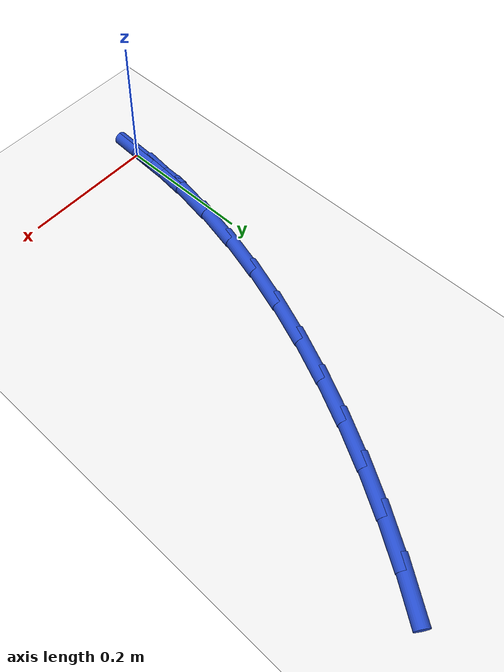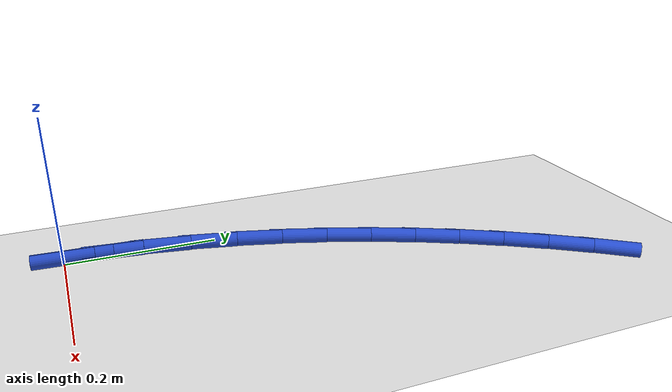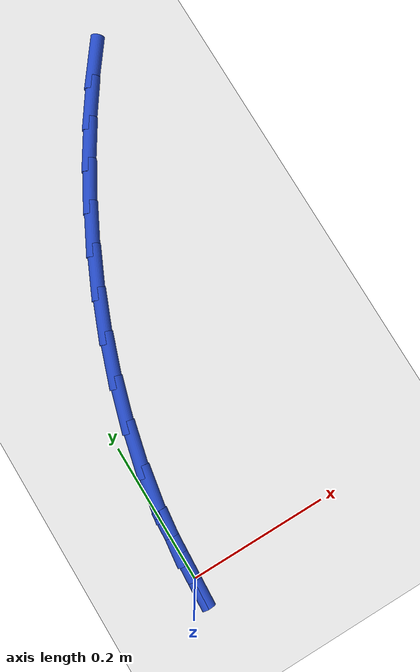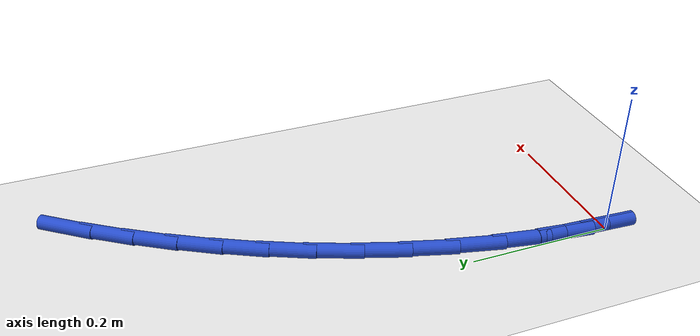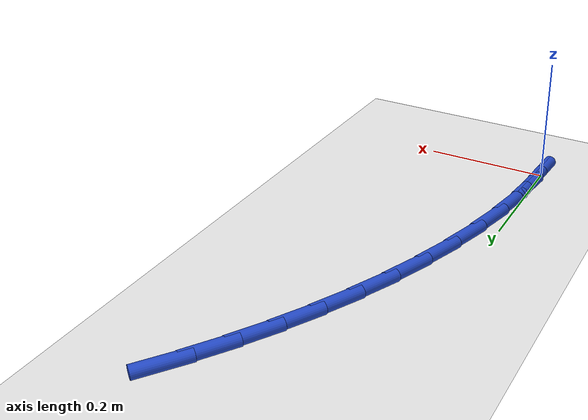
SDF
<sdf version="1.6">
 <world name="default">
  <model name="ground_plane">
   <static>1</static>
   <link name="link">
    <collision name="collision">
     <geometry><plane><normal>0 0 1</normal><size>100 100</size></plane></geometry>
     <surface><friction><ode><mu>100</mu><mu2>50</mu2></ode></friction></surface>
    </collision>
    <visual name="visual">
     <cast_shadows>0</cast_shadows>
     <geometry><plane><normal>0 0 1</normal><size>100 100</size></plane></geometry>
     <material>
      <script><uri>file://media/materials/scripts/gazebo.material</uri><name>Gazebo/WhiteGlow</name></script>
     </material>
    </visual>
   </link>
  </model>
  <model name="line">
   <link name="link_0">
    <pose>-6.591949208711867e-17 4.163336342344337e-17 0.01 0 1.57 1.5212386000244165</pose>
    <collision name="collision">
     <geometry><cylinder><radius>0.01</radius><length>0.08</length></cylinder></geometry>
    </collision>
    <visual name="visual">
     <material>
      <script><name>Gazebo/Blue</name><uri>file://media/materials/scripts/gazebo.material</uri></script>
     </material>
     <geometry><cylinder><radius>0.01</radius><length>0.08</length></cylinder></geometry>
    </visual>
   </link>
   <link name="link_1">
    <pose>0.003130985304847555 0.06312681974622587 0.01 0 1.57 1.4564902885779558</pose>
    <collision name="collision">
     <geometry><cylinder><radius>0.01</radius><length>0.08</length></cylinder></geometry>
    </collision>
    <visual name="visual">
     <material>
      <script><name>Gazebo/Blue</name><uri>file://media/materials/scripts/gazebo.material</uri></script>
     </material>
     <geometry><cylinder><radius>0.01</radius><length>0.08</length></cylinder></geometry>
    </visual>
   </link>
   <link name="link_2">
    <pose>0.01030703391631869 0.1256324204257895 0.01 0 1.57 1.395160729621984</pose>
    <collision name="collision">
     <geometry><cylinder><radius>0.01</radius><length>0.08</length></cylinder></geometry>
    </collision>
    <visual name="visual">
     <material>
      <script><name>Gazebo/Blue</name><uri>file://media/materials/scripts/gazebo.material</uri></script>
     </material>
     <geometry><cylinder><radius>0.01</radius><length>0.08</length></cylinder></geometry>
    </visual>
   </link>
   <link name="link_3">
    <pose>0.021262065247677743 0.18736337205437065 0.01 0 1.57 1.3371923100318246</pose>
    <collision name="collision">
     <geometry><cylinder><radius>0.01</radius><length>0.08</length></cylinder></geometry>
    </collision>
    <visual name="visual">
     <material>
      <script><name>Gazebo/Blue</name><uri>file://media/materials/scripts/gazebo.material</uri></script>
     </material>
     <geometry><cylinder><radius>0.01</radius><length>0.08</length></cylinder></geometry>
    </visual>
   </link>
   <link name="link_4">
    <pose>0.035729998712189126 0.2481662446476491 0.01 0 1.57 1.282440185275843</pose>
    <collision name="collision">
     <geometry><cylinder><radius>0.01</radius><length>0.08</length></cylinder></geometry>
    </collision>
    <visual name="visual">
     <material>
      <script><name>Gazebo/Blue</name><uri>file://media/materials/scripts/gazebo.material</uri></script>
     </material>
     <geometry><cylinder><radius>0.01</radius><length>0.08</length></cylinder></geometry>
    </visual>
   </link>
   <link name="link_5">
    <pose>0.053444753723117244 0.3078876082213047 0.01 0 1.57 1.2306946549842028</pose>
    <collision name="collision">
     <geometry><cylinder><radius>0.01</radius><length>0.08</length></cylinder></geometry>
    </collision>
    <visual name="visual">
     <material>
      <script><name>Gazebo/Blue</name><uri>file://media/materials/scripts/gazebo.material</uri></script>
     </material>
     <geometry><cylinder><radius>0.01</radius><length>0.08</length></cylinder></geometry>
    </visual>
   </link>
   <link name="link_6">
    <pose>0.07414024969372654 0.3663740327910172 0.01 0 1.57 1.1816997921035126</pose>
    <collision name="collision">
     <geometry><cylinder><radius>0.01</radius><length>0.08</length></cylinder></geometry>
    </collision>
    <visual name="visual">
     <material>
      <script><name>Gazebo/Blue</name><uri>file://media/materials/scripts/gazebo.material</uri></script>
     </material>
     <geometry><cylinder><radius>0.01</radius><length>0.08</length></cylinder></geometry>
    </visual>
   </link>
   <link name="link_7">
    <pose>0.09755040603728138 0.4234720883724663 0.01 0 1.57 1.1351675886158208</pose>
    <collision name="collision">
     <geometry><cylinder><radius>0.01</radius><length>0.08</length></cylinder></geometry>
    </collision>
    <visual name="visual">
     <material>
      <script><name>Gazebo/Blue</name><uri>file://media/materials/scripts/gazebo.material</uri></script>
     </material>
     <geometry><cylinder><radius>0.01</radius><length>0.08</length></cylinder></geometry>
    </visual>
   </link>
   <link name="link_8">
    <pose>0.12340914216704613 0.4790283449813317 0.01 0 1.57 1.0907247253814008</pose>
    <collision name="collision">
     <geometry><cylinder><radius>0.01</radius><length>0.08</length></cylinder></geometry>
    </collision>
    <visual name="visual">
     <material>
      <script><name>Gazebo/Blue</name><uri>file://media/materials/scripts/gazebo.material</uri></script>
     </material>
     <geometry><cylinder><radius>0.01</radius><length>0.08</length></cylinder></geometry>
    </visual>
   </link>
   <link name="link_9">
    <pose>0.15146084408867222 0.5329012121961031 0.01 0 1.57 1.0473337646055425</pose>
    <collision name="collision">
     <geometry><cylinder><radius>0.01</radius><length>0.08</length></cylinder></geometry>
    </collision>
    <visual name="visual">
     <material>
      <script><name>Gazebo/Blue</name><uri>file://media/materials/scripts/gazebo.material</uri></script>
     </material>
     <geometry><cylinder><radius>0.01</radius><length>0.08</length></cylinder></geometry>
    </visual>
   </link>
   <link name="link_10">
    <pose>0.18159784646812824 0.5851164556354858 0.01 0 1.57 1.0046860782850657</pose>
    <collision name="collision">
     <geometry><cylinder><radius>0.01</radius><length>0.08</length></cylinder></geometry>
    </collision>
    <visual name="visual">
     <material>
      <script><name>Gazebo/Blue</name><uri>file://media/materials/scripts/gazebo.material</uri></script>
     </material>
     <geometry><cylinder><radius>0.01</radius><length>0.08</length></cylinder></geometry>
    </visual>
   </link>
   <link name="link_11">
    <pose>0.21382210115916478 0.6358238372994117 0.01 0 1.57 0.9632118246739537</pose>
    <collision name="collision">
     <geometry><cylinder><radius>0.01</radius><length>0.08</length></cylinder></geometry>
    </collision>
    <visual name="visual">
     <material>
      <script><name>Gazebo/Blue</name><uri>file://media/materials/scripts/gazebo.material</uri></script>
     </material>
     <geometry><cylinder><radius>0.01</radius><length>0.08</length></cylinder></geometry>
    </visual>
   </link>
   <link name="link_12">
    <pose>0.24813814355815436 0.6851760416303834 0.01 0 1.57 0.9233184836366829</pose>
    <collision name="collision">
     <geometry><cylinder><radius>0.01</radius><length>0.08</length></cylinder></geometry>
    </collision>
    <visual name="visual">
     <material>
      <script><name>Gazebo/Blue</name><uri>file://media/materials/scripts/gazebo.material</uri></script>
     </material>
     <geometry><cylinder><radius>0.01</radius><length>0.08</length></cylinder></geometry>
    </visual>
   </link>
   <link name="link_120">
    <pose>-5.204170427930421e-17 -9.71445146547012e-17 0.01 0 1.57 1.520250838688303</pose>
    <collision name="collision">
     <geometry><cylinder><radius>0.01</radius><length>0.08</length></cylinder></geometry>
    </collision>
    <visual name="visual">
     <material>
      <script><name>Gazebo/Blue</name><uri>file://media/materials/scripts/gazebo.material</uri></script>
     </material>
     <geometry><cylinder><radius>0.01</radius><length>0.08</length></cylinder></geometry>
    </visual>
   </link>
   <link name="link_121">
    <pose>0.003190673896921105 0.06307103415587544 0.01 0 1.57 1.5202508386883025</pose>
    <collision name="collision">
     <geometry><cylinder><radius>0.01</radius><length>0.08</length></cylinder></geometry>
    </collision>
    <visual name="visual">
     <material>
      <script><name>Gazebo/Blue</name><uri>file://media/materials/scripts/gazebo.material</uri></script>
     </material>
     <geometry><cylinder><radius>0.01</radius><length>0.08</length></cylinder></geometry>
    </visual>
   </link>
  </model>
 </world>
</sdf>
